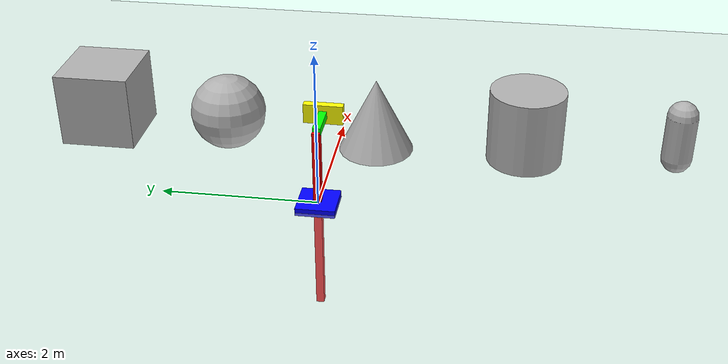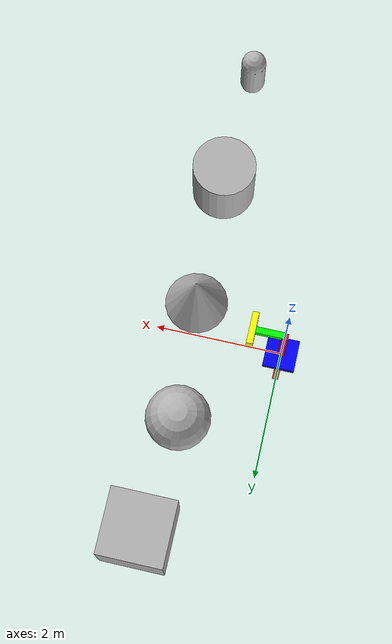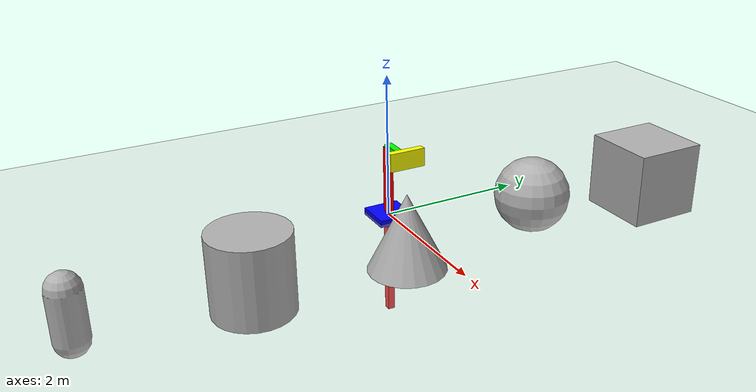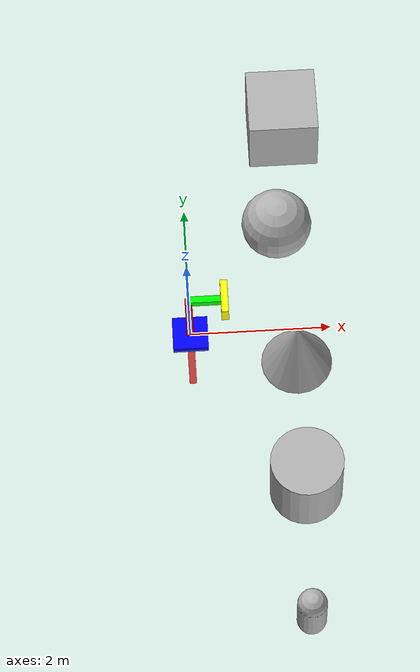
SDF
<sdf version='1.10'>
  <world name='empty'>
    <physics name='1ms' type='ignored'>
      <max_step_size>0.001</max_step_size>
      <real_time_factor>1</real_time_factor>
      <real_time_update_rate>1000</real_time_update_rate>
    </physics>
    <plugin name='gz::sim::systems::Physics' filename='gz-sim-physics-system' />
    <plugin name='gz::sim::systems::UserCommands' filename='gz-sim-user-commands-system' />
    <plugin name='gz::sim::systems::SceneBroadcaster' filename='gz-sim-scene-broadcaster-system' />
    <plugin name='gz::sim::systems::Contact' filename='gz-sim-contact-system' />
    <plugin filename="gz-sim-sensors-system" name="gz::sim::systems::Sensors">
      <render_engine>ogre2</render_engine>
    </plugin>
    <gravity>0 0 -9.8000000000000007</gravity>
    <scene>
      <ambient>0.400000006 0.400000006 0.400000006 1</ambient>
      <background>0.699999988 0.699999988 0.699999988 1</background>
      <shadows>true</shadows>
    </scene>
    <model name='ground_plane'>
      <static>true</static>
      <link name='link'>
        <collision name='collision'>
          <geometry>
            <plane>
              <normal>0 0 1</normal>
              <size>100 100</size>
            </plane>
          </geometry>
          <surface>
            <friction>
              <ode />
            </friction>
            <bounce />
            <contact />
          </surface>
        </collision>
        <visual name='visual'>
          <geometry>
            <plane>
              <normal>0 0 1</normal>
              <size>100 100</size>
            </plane>
          </geometry>
          <material>
            <ambient>0.800000012 0.800000012 0.800000012 1</ambient>
            <diffuse>0.800000012 0.800000012 0.800000012 1</diffuse>
            <specular>0.800000012 0.800000012 0.800000012 1</specular>
          </material>
        </visual>
        <pose>0 0 0 0 0 0</pose>
        <inertial>
          <pose>0 0 0 0 0 0</pose>
          <mass>1</mass>
          <inertia>
            <ixx>1</ixx>
            <ixy>0</ixy>
            <ixz>0</ixz>
            <iyy>1</iyy>
            <iyz>0</iyz>
            <izz>1</izz>
          </inertia>
        </inertial>
        <enable_wind>false</enable_wind>
      </link>
      <pose>0 0 0 0 0 0</pose>
      <self_collide>false</self_collide>
    </model>
    <model name='box'>
      <pose>1.5 3.2200000000000002 0.5 0 0 0</pose>
      <link name='box_link'>
        <inertial>
          <inertia>
            <ixx>0.16666</ixx>
            <ixy>0</ixy>
            <ixz>0</ixz>
            <iyy>0.16666</iyy>
            <iyz>0</iyz>
            <izz>0.16666</izz>
          </inertia>
          <mass>1</mass>
          <pose>0 0 0 0 0 0</pose>
        </inertial>
        <collision name='box_collision'>
          <geometry>
            <box>
              <size>1 1 1</size>
            </box>
          </geometry>
          <surface>
            <friction>
              <ode />
            </friction>
            <bounce />
            <contact />
          </surface>
        </collision>
        <visual name='box_visual'>
          <geometry>
            <box>
              <size>1 1 1</size>
            </box>
          </geometry>
          <material>
            <ambient>0.300000012 0.300000012 0.300000012 1</ambient>
            <diffuse>0.699999988 0.699999988 0.699999988 1</diffuse>
            <specular>1 1 1 1</specular>
          </material>
        </visual>
        <pose>0 0 0 0 0 0</pose>
        <enable_wind>false</enable_wind>
      </link>
      <static>false</static>
      <self_collide>false</self_collide>
    </model>
    <model name='sphere'>
      <pose>1.3163306256387868 1.4499776374911897 0.5 0 0 0</pose>
      <link name='sphere_link'>
        <inertial>
          <inertia>
            <ixx>0.10000000000000001</ixx>
            <ixy>0</ixy>
            <ixz>0</ixz>
            <iyy>0.10000000000000001</iyy>
            <iyz>0</iyz>
            <izz>0.10000000000000001</izz>
          </inertia>
          <mass>1</mass>
          <pose>0 0 0 0 0 0</pose>
        </inertial>
        <collision name='sphere_collision'>
          <geometry>
            <sphere>
              <radius>0.5</radius>
            </sphere>
          </geometry>
          <surface>
            <friction>
              <ode />
            </friction>
            <bounce />
            <contact />
          </surface>
        </collision>
        <visual name='sphere_visual'>
          <geometry>
            <sphere>
              <radius>0.5</radius>
            </sphere>
          </geometry>
          <material>
            <ambient>0.300000012 0.300000012 0.300000012 1</ambient>
            <diffuse>0.699999988 0.699999988 0.699999988 1</diffuse>
            <specular>1 1 1 1</specular>
          </material>
        </visual>
        <pose>0 0 0 0 0 0</pose>
        <enable_wind>false</enable_wind>
      </link>
      <static>false</static>
      <self_collide>false</self_collide>
    </model>
    <model name='cone'>
      <pose>1.481414969825936 -0.52373858567181542 0.5 0 0 0</pose>
      <link name='cone_link'>
        <inertial>
          <inertia>
            <ixx>0.074999999999999997</ixx>
            <ixy>0</ixy>
            <ixz>0</ixz>
            <iyy>0.074999999999999997</iyy>
            <iyz>0</iyz>
            <izz>0.074999999999999997</izz>
          </inertia>
          <mass>1</mass>
          <pose>0 0 0 0 0 0</pose>
        </inertial>
        <collision name='cone_collision'>
          <geometry>
            <cone>
              <radius>0.5</radius>
              <length>1</length>
            </cone>
          </geometry>
          <surface>
            <friction>
              <ode />
            </friction>
            <bounce />
            <contact />
          </surface>
        </collision>
        <visual name='cone_visual'>
          <geometry>
            <cone>
              <radius>0.5</radius>
              <length>1</length>
            </cone>
          </geometry>
          <material>
            <ambient>0.300000012 0.300000012 0.300000012 1</ambient>
            <diffuse>0.699999988 0.699999988 0.699999988 1</diffuse>
            <specular>1 1 1 1</specular>
          </material>
        </visual>
        <pose>0 0 0 0 0 0</pose>
        <enable_wind>false</enable_wind>
      </link>
      <static>false</static>
      <self_collide>false</self_collide>
    </model>
    <model name='cylinder'>
      <pose>1.4814146716491177 -2.504842054892829 0.5 0 0 0</pose>
      <link name='cylinder_link'>
        <inertial>
          <inertia>
            <ixx>0.14580000000000001</ixx>
            <ixy>0</ixy>
            <ixz>0</ixz>
            <iyy>0.14580000000000001</iyy>
            <iyz>0</iyz>
            <izz>0.125</izz>
          </inertia>
          <mass>1</mass>
          <pose>0 0 0 0 0 0</pose>
        </inertial>
        <collision name='cylinder_collision'>
          <geometry>
            <cylinder>
              <radius>0.5</radius>
              <length>1</length>
            </cylinder>
          </geometry>
          <surface>
            <friction>
              <ode />
            </friction>
            <bounce />
            <contact />
          </surface>
        </collision>
        <visual name='cylinder_visual'>
          <geometry>
            <cylinder>
              <radius>0.5</radius>
              <length>1</length>
            </cylinder>
          </geometry>
          <material>
            <ambient>0.300000012 0.300000012 0.300000012 1</ambient>
            <diffuse>0.699999988 0.699999988 0.699999988 1</diffuse>
            <specular>1 1 1 1</specular>
          </material>
        </visual>
        <pose>0 0 0 0 0 0</pose>
        <enable_wind>false</enable_wind>
      </link>
      <static>false</static>
      <self_collide>false</self_collide>
    </model>
    <model name='capsule'>
      <pose>1.4192231097183097 -4.4596295681472462 0.5 0 0 0</pose>
      <link name='capsule_link'>
        <inertial>
          <inertia>
            <ixx>0.074153999999999998</ixx>
            <ixy>0</ixy>
            <ixz>0</ixz>
            <iyy>0.074153999999999998</iyy>
            <iyz>0</iyz>
            <izz>0.018769000000000001</izz>
          </inertia>
          <mass>1</mass>
          <pose>0 0 0 0 0 0</pose>
        </inertial>
        <collision name='capsule_collision'>
          <geometry>
            <capsule>
              <radius>0.20000000000000001</radius>
              <length>0.59999999999999998</length>
            </capsule>
          </geometry>
          <surface>
            <friction>
              <ode />
            </friction>
            <bounce />
            <contact />
          </surface>
        </collision>
        <visual name='capsule_visual'>
          <geometry>
            <capsule>
              <radius>0.20000000000000001</radius>
              <length>0.59999999999999998</length>
            </capsule>
          </geometry>
          <material>
            <ambient>0.300000012 0.300000012 0.300000012 1</ambient>
            <diffuse>0.699999988 0.699999988 0.699999988 1</diffuse>
            <specular>1 1 1 1</specular>
          </material>
        </visual>
        <pose>0 0 0 0 0 0</pose>
        <enable_wind>false</enable_wind>
      </link>
      <static>false</static>
      <self_collide>false</self_collide>
    </model>

    <include>
      <name>Observer</name>
      <pose>0 0 0 0 0 0</pose>
      <uri>file://home/tom/workspace/thesis/dataset_generation/observer.sdf</uri>
    </include>

    <light name='sun' type='directional'>
      <pose>0 0 10 0 0 0</pose>
      <cast_shadows>true</cast_shadows>
      <intensity>1</intensity>
      <direction>-0.5 0.10000000000000001 -0.90000000000000002</direction>
      <diffuse>0.800000012 0.800000012 0.800000012 1</diffuse>
      <specular>0.200000003 0.200000003 0.200000003 1</specular>
      <attenuation>
        <range>1000</range>
        <linear>0.01</linear>
        <constant>0.90000000000000002</constant>
        <quadratic>0.001</quadratic>
      </attenuation>
      <spot>
        <inner_angle>0</inner_angle>
        <outer_angle>0</outer_angle>
        <falloff>0</falloff>
      </spot>
    </light>
  </world>
</sdf>

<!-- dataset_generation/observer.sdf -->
<sdf version='1.11'>
<model name='observer'>
    <pose>0 0 0 0 0 0</pose>

    <!-- Link for the base of the observer. The observer base is jointed to the world with two prismatic joints allowing XY motion -->
    <link name='observer_link'>
        <inertial>
            <mass>1</mass>
            <pose>0 0 0 0 0 0</pose>
        </inertial>
        <visual name='observer_base_visual'>
            <geometry>
                <box>
                    <size>0.5 0.5 0.1</size>
                </box>
            </geometry>
            <material>
                <ambient>0 0 1 1</ambient>
                <diffuse>0 0 1 1</diffuse>
                <specular>1 1 1 1</specular>
            </material>
        </visual>
        <pose>0 0 0 0 0 0</pose>
    </link>
    <link name="x_slider_link" />
    <link name="z_rotator_link" />
    <joint name="world_x_slider" type="prismatic">
        <parent>world</parent>
        <child>x_slider_link</child>
        <axis>
            <xyz>1 0 0</xyz>
            <dynamics>
                <damping>3.0</damping>
                <friction>0.1</friction>
            </dynamics>
        </axis>
    </joint>
    <joint name="world_y_slider" type="prismatic">
        <parent>x_slider_link</parent>
        <child>z_rotator_link</child>
        <axis>
            <xyz>0 1 0</xyz>
            <dynamics>
                <damping>3.0</damping>
                <friction>0.1</friction>
            </dynamics>
        </axis>
    </joint>
    <joint name="z_rotator" type="revolute">
        <parent>z_rotator_link</parent>
        <child>observer_link</child>
        <axis>
            <xyz>0 0 1</xyz>
            <dynamics>
                <damping>3.0</damping>
                <friction>0.1</friction>
            </dynamics>
        </axis>
    </joint>

    <!-- The Z slider moves the base_link up and down -->
    <link name='z_slider_link'>
        <gravity>false</gravity>
        <visual name='z_slider_visual'>
            <geometry>
                <box>
                    <size>0.1 0.1 2.5</size>
                </box>
            </geometry>
            <material>
                <ambient>1 0 0 1</ambient>
                <diffuse>1 0 0 1</diffuse>
                <specular>1 1 1 1</specular>
            </material>
        </visual>
        <pose>0 0 -0.25 0 0 0</pose>
    </link>
    <joint name="z_slider_joint" type="prismatic">
        <parent>observer_link</parent>
        <child>z_slider_link</child>
        <axis>
            <xyz>0 0 1</xyz>
            <limit>
                <lower>-1</lower>
                <upper>2.5</upper>
            </limit>
            <dynamics>
                <damping>10.0</damping>
                <friction>0.1</friction>
            </dynamics>
        </axis>
    </joint>

    <!-- The z_boom link extends forward from the top of the z_slider,
        this makes it more difficult to do pure rotations, which SLAM systems can struggle with. -->
    <link name='z_boom_link'>
        <gravity>false</gravity>
        <visual name='z_boom_visual'>
            <geometry>
                <box>
                    <size>0.5 0.1 0.1</size>
                </box>
            </geometry>
            <material>
                <ambient>0 1 0 1</ambient>
                <diffuse>0 1 0 1</diffuse>
                <specular>1 1 1 1</specular>
            </material>
        </visual>
        <pose>0.25 0 1 0 0 0</pose>
    </link>
    <joint name="z_boom_joint" type="fixed">
        <parent>z_slider_link</parent>
        <child>z_boom_link</child>
    </joint>

    <!-- The base link is where all data is collected. It contains the IMU, 3 cameras (stereo and segmentation), and is where ground truth is recorded. -->
    <link name="base_link">
        <gravity>false</gravity>
        <visual name='base_visual'>
            <geometry>
                <box>
                    <size>0.1 0.5 0.25</size>
                </box>
            </geometry>
            <material>
                <ambient>1 1 0 1</ambient>
                <diffuse>1 1 0 1</diffuse>
                <specular>1 1 1 1</specular>
            </material>
        </visual>
        <pose>0.5 0 1 0 0 0</pose>
        <sensor name='observer_camera' type='camera'>
            <topic>observer/left</topic>
            <camera>
            <camera_info_topic>observer/left_info</camera_info_topic>

                <horizontal_fov>1.047</horizontal_fov>
                <image>
                    <width>1280</width>
                    <height>800</height>
                </image>
                <clip>
                    <near>0.1</near>
                    <far>100</far>
                </clip>
            </camera>
            <always_on>1</always_on>
            <update_rate>30</update_rate>
            <visualize>true</visualize>
            <pose>0 -0.0375 0 0 0 0</pose>
        </sensor>
        <sensor name='observer_camera_right' type='camera'>
            <topic>observer/right</topic>
            <camera>
                <horizontal_fov>0.6</horizontal_fov>
                <image>
                    <width>1280</width>
                    <height>800</height>
                </image>
                <clip>
                    <near>0.1</near>
                    <far>100</far>
                </clip>
            </camera>
            <always_on>1</always_on>
            <update_rate>30</update_rate>
            <visualize>true</visualize>
            <pose>0 0.0375 0 0 0 0</pose>
        </sensor>
        <sensor name="observer_imu_sensor" type="imu">
            <always_on>1</always_on>
            <update_rate>200</update_rate>
            <visualize>false</visualize>
            <topic>observer/imu</topic>
        </sensor>
    </link>
    <joint name="base_joint" type="fixed">
        <parent>z_boom_link</parent>
        <child>base_link</child>
    </joint>

    <static>false</static>
    <self_collide>false</self_collide>
    <plugin name='dataset_generation::VelocityController' filename='VelocityController' />

</model>
</sdf>
